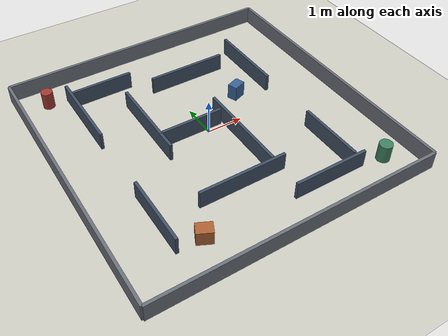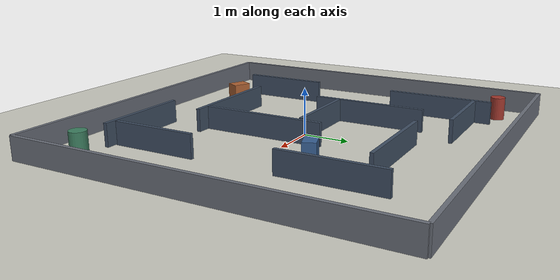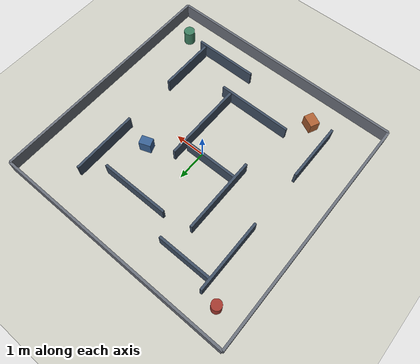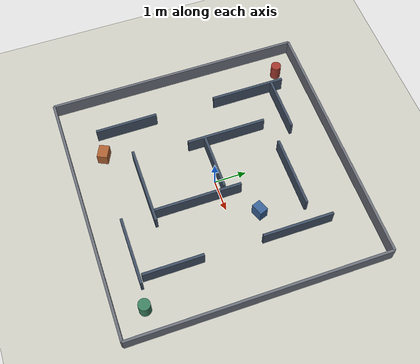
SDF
<?xml version="1.0"?>
<sdf version="1.9">
  <world name="tracked_robot_world">
    <physics name="default_physics" type="ignored">
      <max_step_size>0.001</max_step_size>
      <real_time_factor>1.0</real_time_factor>
      <real_time_update_rate>1000</real_time_update_rate>
    </physics>

    <plugin filename="gz-sim-physics-system" name="gz::sim::systems::Physics"/>
    <plugin filename="gz-sim-user-commands-system" name="gz::sim::systems::UserCommands"/>
    <plugin filename="gz-sim-scene-broadcaster-system" name="gz::sim::systems::SceneBroadcaster"/>
    <plugin filename="gz-sim-sensors-system" name="gz::sim::systems::Sensors">
      <render_engine>ogre2</render_engine>
    </plugin>
    <plugin filename="gz-sim-imu-system" name="gz::sim::systems::Imu"/>

    <light name="sun" type="directional">
      <cast_shadows>true</cast_shadows>
      <pose>0 0 10 0 0 0</pose>
      <diffuse>0.82 0.82 0.78 1</diffuse>
      <specular>0.18 0.18 0.18 1</specular>
      <direction>-0.35 0.15 -0.92</direction>
    </light>

    <model name="ground_plane">
      <static>true</static>
      <link name="link">
        <collision name="collision">
          <geometry><plane><normal>0 0 1</normal><size>16 16</size></plane></geometry>
        </collision>
        <visual name="visual">
          <geometry><plane><normal>0 0 1</normal><size>16 16</size></plane></geometry>
          <material><diffuse>0.80 0.80 0.76 1</diffuse></material>
        </visual>
      </link>
    </model>

    <!-- Outer boundary: 8 m x 8 m, with several narrow interior passages. -->
    <model name="outer_north"><static>true</static><pose>0 4 0.25 0 0 0</pose><link name="link"><collision name="collision"><geometry><box><size>8.0 0.08 0.5</size></box></geometry></collision><visual name="visual"><geometry><box><size>8.0 0.08 0.5</size></box></geometry><material><diffuse>0.42 0.44 0.48 1</diffuse></material></visual></link></model>
    <model name="outer_south"><static>true</static><pose>0 -4 0.25 0 0 0</pose><link name="link"><collision name="collision"><geometry><box><size>8.0 0.08 0.5</size></box></geometry></collision><visual name="visual"><geometry><box><size>8.0 0.08 0.5</size></box></geometry><material><diffuse>0.42 0.44 0.48 1</diffuse></material></visual></link></model>
    <model name="outer_east"><static>true</static><pose>4 0 0.25 0 0 0</pose><link name="link"><collision name="collision"><geometry><box><size>0.08 8.0 0.5</size></box></geometry></collision><visual name="visual"><geometry><box><size>0.08 8.0 0.5</size></box></geometry><material><diffuse>0.42 0.44 0.48 1</diffuse></material></visual></link></model>
    <model name="outer_west"><static>true</static><pose>-4 0 0.25 0 0 0</pose><link name="link"><collision name="collision"><geometry><box><size>0.08 8.0 0.5</size></box></geometry></collision><visual name="visual"><geometry><box><size>0.08 8.0 0.5</size></box></geometry><material><diffuse>0.42 0.44 0.48 1</diffuse></material></visual></link></model>

    <!-- Zig-zag corridors and cul-de-sacs. -->
    <model name="wall_west_upper"><static>true</static><pose>-2.65 2.05 0.25 0 0 0</pose><link name="link"><collision name="collision"><geometry><box><size>0.08 2.35 0.5</size></box></geometry></collision><visual name="visual"><geometry><box><size>0.08 2.35 0.5</size></box></geometry><material><diffuse>0.25 0.31 0.39 1</diffuse></material></visual></link></model>
    <model name="wall_west_lower"><static>true</static><pose>-2.65 -2.0 0.25 0 0 0</pose><link name="link"><collision name="collision"><geometry><box><size>0.08 1.95 0.5</size></box></geometry></collision><visual name="visual"><geometry><box><size>0.08 1.95 0.5</size></box></geometry><material><diffuse>0.25 0.31 0.39 1</diffuse></material></visual></link></model>
    <model name="wall_mid_left"><static>true</static><pose>-1.35 0.85 0.25 0 0 0</pose><link name="link"><collision name="collision"><geometry><box><size>0.08 2.5 0.5</size></box></geometry></collision><visual name="visual"><geometry><box><size>0.08 2.5 0.5</size></box></geometry><material><diffuse>0.25 0.31 0.39 1</diffuse></material></visual></link></model>
    <model name="wall_mid_right"><static>true</static><pose>0.55 -0.7 0.25 0 0 0</pose><link name="link"><collision name="collision"><geometry><box><size>0.08 2.7 0.5</size></box></geometry></collision><visual name="visual"><geometry><box><size>0.08 2.7 0.5</size></box></geometry><material><diffuse>0.25 0.31 0.39 1</diffuse></material></visual></link></model>
    <model name="wall_east_upper"><static>true</static><pose>2.35 1.75 0.25 0 0 0</pose><link name="link"><collision name="collision"><geometry><box><size>0.08 2.2 0.5</size></box></geometry></collision><visual name="visual"><geometry><box><size>0.08 2.2 0.5</size></box></geometry><material><diffuse>0.25 0.31 0.39 1</diffuse></material></visual></link></model>
    <model name="wall_east_lower"><static>true</static><pose>2.35 -2.05 0.25 0 0 0</pose><link name="link"><collision name="collision"><geometry><box><size>0.08 1.85 0.5</size></box></geometry></collision><visual name="visual"><geometry><box><size>0.08 1.85 0.5</size></box></geometry><material><diffuse>0.25 0.31 0.39 1</diffuse></material></visual></link></model>

    <model name="wall_nw_hall"><static>true</static><pose>-1.75 2.85 0.25 0 0 0</pose><link name="link"><collision name="collision"><geometry><box><size>1.75 0.08 0.5</size></box></geometry></collision><visual name="visual"><geometry><box><size>1.75 0.08 0.5</size></box></geometry><material><diffuse>0.25 0.31 0.39 1</diffuse></material></visual></link></model>
    <model name="wall_north_mid"><static>true</static><pose>0.65 2.25 0.25 0 0 0</pose><link name="link"><collision name="collision"><geometry><box><size>2.25 0.08 0.5</size></box></geometry></collision><visual name="visual"><geometry><box><size>2.25 0.08 0.5</size></box></geometry><material><diffuse>0.25 0.31 0.39 1</diffuse></material></visual></link></model>
    <model name="wall_center"><static>true</static><pose>-0.45 0.15 0.25 0 0 0</pose><link name="link"><collision name="collision"><geometry><box><size>1.8 0.08 0.5</size></box></geometry></collision><visual name="visual"><geometry><box><size>1.8 0.08 0.5</size></box></geometry><material><diffuse>0.25 0.31 0.39 1</diffuse></material></visual></link></model>
    <model name="wall_south_mid"><static>true</static><pose>-0.35 -2.1 0.25 0 0 0</pose><link name="link"><collision name="collision"><geometry><box><size>2.45 0.08 0.5</size></box></geometry></collision><visual name="visual"><geometry><box><size>2.45 0.08 0.5</size></box></geometry><material><diffuse>0.25 0.31 0.39 1</diffuse></material></visual></link></model>
    <model name="wall_se_hall"><static>true</static><pose>1.55 -3.05 0.25 0 0 0</pose><link name="link"><collision name="collision"><geometry><box><size>2.1 0.08 0.5</size></box></geometry></collision><visual name="visual"><geometry><box><size>2.1 0.08 0.5</size></box></geometry><material><diffuse>0.25 0.31 0.39 1</diffuse></material></visual></link></model>

    <!-- Landmarks make the map visibly richer and help judge scan alignment. -->
    <model name="pillar_red"><static>true</static><pose>-3.2 3.25 0.25 0 0 0</pose><link name="link"><collision name="collision"><geometry><cylinder><radius>0.16</radius><length>0.5</length></cylinder></geometry></collision><visual name="visual"><geometry><cylinder><radius>0.16</radius><length>0.5</length></cylinder></geometry><material><diffuse>0.63 0.22 0.18 1</diffuse></material></visual></link></model>
    <model name="pillar_green"><static>true</static><pose>3.2 -3.15 0.25 0 0 0</pose><link name="link"><collision name="collision"><geometry><cylinder><radius>0.18</radius><length>0.5</length></cylinder></geometry></collision><visual name="visual"><geometry><cylinder><radius>0.18</radius><length>0.5</length></cylinder></geometry><material><diffuse>0.24 0.50 0.38 1</diffuse></material></visual></link></model>
    <model name="box_blue"><static>true</static><pose>1.45 0.9 0.22 0 0 0.35</pose><link name="link"><collision name="collision"><geometry><box><size>0.38 0.28 0.44</size></box></geometry></collision><visual name="visual"><geometry><box><size>0.38 0.28 0.44</size></box></geometry><material><diffuse>0.22 0.38 0.58 1</diffuse></material></visual></link></model>
    <model name="box_orange"><static>true</static><pose>-1.95 -2.95 0.20 0 0 -0.45</pose><link name="link"><collision name="collision"><geometry><box><size>0.42 0.32 0.40</size></box></geometry></collision><visual name="visual"><geometry><box><size>0.42 0.32 0.40</size></box></geometry><material><diffuse>0.68 0.38 0.20 1</diffuse></material></visual></link></model>
  </world>
</sdf>
